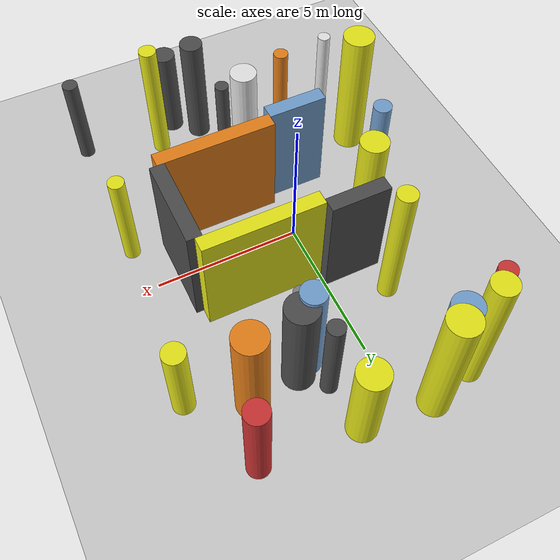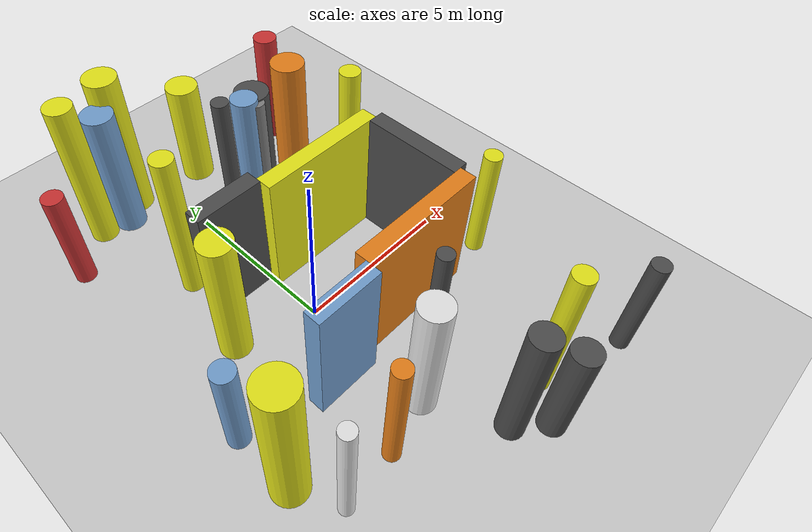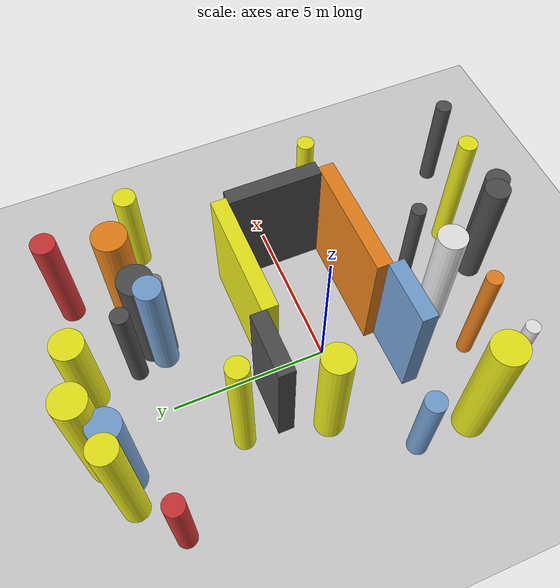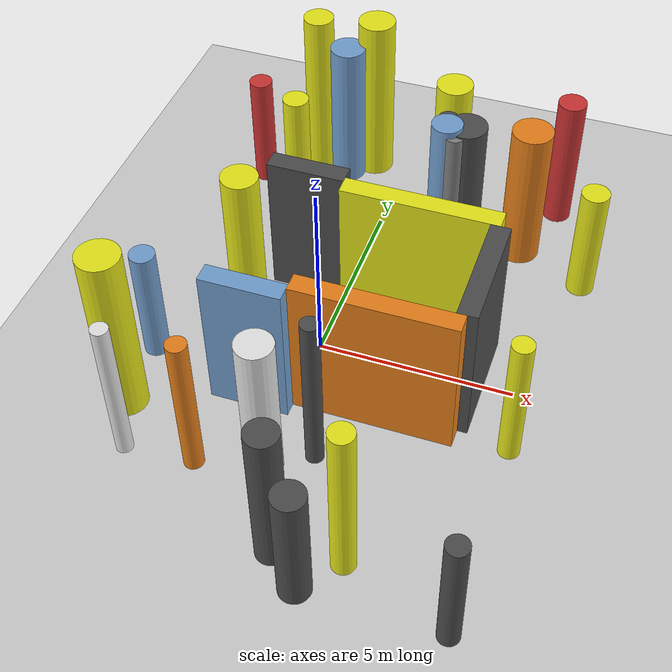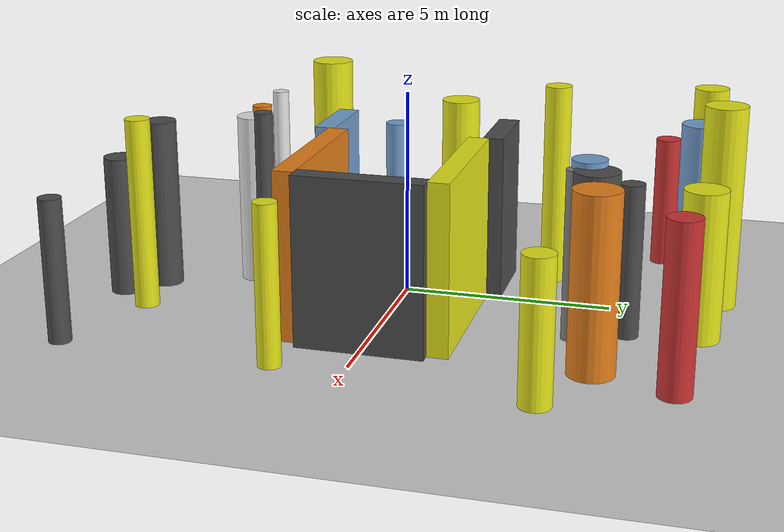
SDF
<?xml version='1.0'?>
<sdf version='1.6'>
  <world name='routeA_rl_v1__dense_recovery__rl_train__cul_de_sac_trap__000082'>
    <!-- Sun light -->
    <light name='sun' type='directional'>
      <cast_shadows>1</cast_shadows>
      <pose>0 0 10 0 0 0</pose>
      <diffuse>0.8 0.8 0.8 1</diffuse>
      <specular>0.2 0.2 0.2 1</specular>
      <attenuation>
        <range>1000</range>
        <constant>0.9</constant>
        <linear>0.01</linear>
        <quadratic>0.001</quadratic>
      </attenuation>
      <direction>-0.5 0.1 -0.9</direction>
    </light>

    <!-- Ground plane -->
    <model name='ground_plane'>
      <static>1</static>
      <link name='link'>
        <collision name='collision'>
          <geometry>
            <plane>
              <normal>0 0 1</normal>
              <size>100 100</size>
            </plane>
          </geometry>
          <surface>
            <contact>
              <collide_bitmask>65535</collide_bitmask>
              <ode/>
            </contact>
            <friction>
              <ode>
                <mu>100</mu>
                <mu2>50</mu2>
              </ode>
              <torsional><ode/></torsional>
            </friction>
            <bounce/>
          </surface>
          <max_contacts>10</max_contacts>
        </collision>
        <visual name='visual'>
          <cast_shadows>0</cast_shadows>
          <geometry>
            <plane>
              <normal>0 0 1</normal>
              <size>100 100</size>
            </plane>
          </geometry>
          <material>
            <script>
              <uri>file://media/materials/scripts/gazebo.material</uri>
              <n>Gazebo/Grey</n>
            </script>
          </material>
        </visual>
      </link>
    </model>

    <!-- Environment -->
    <magnetic_field>6e-06 2.3e-05 -4.2e-05</magnetic_field>
    <atmosphere type='adiabatic'/>
    <physics name='default_physics' default='0' type='ode'>
      <gravity>0 0 -9.8</gravity>
      <max_step_size>0.004</max_step_size>
      <real_time_factor>1</real_time_factor>
      <real_time_update_rate>250</real_time_update_rate>
    </physics>
    <scene>
      <ambient>0.4 0.4 0.4 1</ambient>
      <background>0.7 0.7 0.7 1</background>
      <shadows>1</shadows>
    </scene>
    <wind/>
    <spherical_coordinates>
      <surface_model>EARTH_WGS84</surface_model>
      <latitude_deg>0</latitude_deg>
      <longitude_deg>0</longitude_deg>
      <elevation>0</elevation>
      <heading_deg>0</heading_deg>
    </spherical_coordinates>

    <!-- ============ OBSTACLES (30) ============ -->
    <model name='trap_side_l'>
      <static>1</static>
      <link name='link'>
        <visual name='visual'>
          <geometry>
            <box>
              <size>4.0000 0.5000 4.0000</size>
            </box>
          </geometry>
          <material>
            <script>
              <n>Gazebo/Orange</n>
              <uri>file://media/materials/scripts/gazebo.material</uri>
            </script>
            <ambient>0.9 0.5 0.1 1</ambient>
          </material>
        </visual>
        <collision name='collision'>
          <geometry>
            <box>
              <size>4.0000 0.5000 4.0000</size>
            </box>
          </geometry>
          <max_contacts>10</max_contacts>
          <surface>
            <contact><ode/></contact>
            <bounce/>
            <friction>
              <ode><mu>1</mu><mu2>1</mu2></ode>
              <torsional><ode/></torsional>
            </friction>
          </surface>
        </collision>
      </link>
      <pose>2.0000 -1.7500 2.0000 0 0 0.0000</pose>
    </model>

    <model name='trap_side_r'>
      <static>1</static>
      <link name='link'>
        <visual name='visual'>
          <geometry>
            <box>
              <size>4.0000 0.5000 4.0000</size>
            </box>
          </geometry>
          <material>
            <script>
              <n>Gazebo/Yellow</n>
              <uri>file://media/materials/scripts/gazebo.material</uri>
            </script>
            <ambient>0.9 0.9 0.1 1</ambient>
          </material>
        </visual>
        <collision name='collision'>
          <geometry>
            <box>
              <size>4.0000 0.5000 4.0000</size>
            </box>
          </geometry>
          <max_contacts>10</max_contacts>
          <surface>
            <contact><ode/></contact>
            <bounce/>
            <friction>
              <ode><mu>1</mu><mu2>1</mu2></ode>
              <torsional><ode/></torsional>
            </friction>
          </surface>
        </collision>
      </link>
      <pose>2.0000 1.7500 2.0000 0 0 0.0000</pose>
    </model>

    <model name='trap_back'>
      <static>1</static>
      <link name='link'>
        <visual name='visual'>
          <geometry>
            <box>
              <size>0.5000 3.0000 4.0000</size>
            </box>
          </geometry>
          <material>
            <script>
              <n>Gazebo/DarkGrey</n>
              <uri>file://media/materials/scripts/gazebo.material</uri>
            </script>
            <ambient>0.3 0.3 0.3 1</ambient>
          </material>
        </visual>
        <collision name='collision'>
          <geometry>
            <box>
              <size>0.5000 3.0000 4.0000</size>
            </box>
          </geometry>
          <max_contacts>10</max_contacts>
          <surface>
            <contact><ode/></contact>
            <bounce/>
            <friction>
              <ode><mu>1</mu><mu2>1</mu2></ode>
              <torsional><ode/></torsional>
            </friction>
          </surface>
        </collision>
      </link>
      <pose>4.0000 0.0000 2.0000 0 0 0.0000</pose>
    </model>

    <model name='trap_funnel_l'>
      <static>1</static>
      <link name='link'>
        <visual name='visual'>
          <geometry>
            <box>
              <size>2.0000 0.5000 4.0000</size>
            </box>
          </geometry>
          <material>
            <script>
              <n>Gazebo/Blue</n>
              <uri>file://media/materials/scripts/gazebo.material</uri>
            </script>
            <ambient>0.447 0.624 0.812 1</ambient>
          </material>
        </visual>
        <collision name='collision'>
          <geometry>
            <box>
              <size>2.0000 0.5000 4.0000</size>
            </box>
          </geometry>
          <max_contacts>10</max_contacts>
          <surface>
            <contact><ode/></contact>
            <bounce/>
            <friction>
              <ode><mu>1</mu><mu2>1</mu2></ode>
              <torsional><ode/></torsional>
            </friction>
          </surface>
        </collision>
      </link>
      <pose>-1.0000 -2.1000 2.0000 0 0 0.0000</pose>
    </model>

    <model name='trap_funnel_r'>
      <static>1</static>
      <link name='link'>
        <visual name='visual'>
          <geometry>
            <box>
              <size>2.0000 0.5000 4.0000</size>
            </box>
          </geometry>
          <material>
            <script>
              <n>Gazebo/DarkGrey</n>
              <uri>file://media/materials/scripts/gazebo.material</uri>
            </script>
            <ambient>0.3 0.3 0.3 1</ambient>
          </material>
        </visual>
        <collision name='collision'>
          <geometry>
            <box>
              <size>2.0000 0.5000 4.0000</size>
            </box>
          </geometry>
          <max_contacts>10</max_contacts>
          <surface>
            <contact><ode/></contact>
            <bounce/>
            <friction>
              <ode><mu>1</mu><mu2>1</mu2></ode>
              <torsional><ode/></torsional>
            </friction>
          </surface>
        </collision>
      </link>
      <pose>-1.0000 2.1000 2.0000 0 0 0.0000</pose>
    </model>

    <model name='trap_scatter_0'>
      <static>1</static>
      <link name='link'>
        <visual name='visual'>
          <geometry>
            <cylinder>
              <radius>0.2412</radius>
              <length>3.9821</length>
            </cylinder>
          </geometry>
          <material>
            <script>
              <n>Gazebo/Grey</n>
              <uri>file://media/materials/scripts/gazebo.material</uri>
            </script>
            <ambient>0.5 0.5 0.5 1</ambient>
          </material>
        </visual>
        <collision name='collision'>
          <geometry>
            <cylinder>
              <radius>0.2412</radius>
              <length>3.9821</length>
            </cylinder>
          </geometry>
          <max_contacts>10</max_contacts>
          <surface>
            <contact><ode/></contact>
            <bounce/>
            <friction>
              <ode><mu>1</mu><mu2>1</mu2></ode>
              <torsional><ode/></torsional>
            </friction>
          </surface>
        </collision>
      </link>
      <pose>2.0764 4.4012 1.9910 0 0 0.0000</pose>
    </model>

    <model name='trap_scatter_1'>
      <static>1</static>
      <link name='link'>
        <visual name='visual'>
          <geometry>
            <cylinder>
              <radius>0.4105</radius>
              <length>4.1604</length>
            </cylinder>
          </geometry>
          <material>
            <script>
              <n>Gazebo/Blue</n>
              <uri>file://media/materials/scripts/gazebo.material</uri>
            </script>
            <ambient>0.447 0.624 0.812 1</ambient>
          </material>
        </visual>
        <collision name='collision'>
          <geometry>
            <cylinder>
              <radius>0.4105</radius>
              <length>4.1604</length>
            </cylinder>
          </geometry>
          <max_contacts>10</max_contacts>
          <surface>
            <contact><ode/></contact>
            <bounce/>
            <friction>
              <ode><mu>1</mu><mu2>1</mu2></ode>
              <torsional><ode/></torsional>
            </friction>
          </surface>
        </collision>
      </link>
      <pose>1.8128 4.6395 2.0802 0 0 0.0000</pose>
    </model>

    <model name='trap_scatter_2'>
      <static>1</static>
      <link name='link'>
        <visual name='visual'>
          <geometry>
            <cylinder>
              <radius>0.4128</radius>
              <length>4.9771</length>
            </cylinder>
          </geometry>
          <material>
            <script>
              <n>Gazebo/Yellow</n>
              <uri>file://media/materials/scripts/gazebo.material</uri>
            </script>
            <ambient>0.9 0.9 0.1 1</ambient>
          </material>
        </visual>
        <collision name='collision'>
          <geometry>
            <cylinder>
              <radius>0.4128</radius>
              <length>4.9771</length>
            </cylinder>
          </geometry>
          <max_contacts>10</max_contacts>
          <surface>
            <contact><ode/></contact>
            <bounce/>
            <friction>
              <ode><mu>1</mu><mu2>1</mu2></ode>
              <torsional><ode/></torsional>
            </friction>
          </surface>
        </collision>
      </link>
      <pose>-2.4859 6.9817 2.4886 0 0 0.0000</pose>
    </model>

    <model name='trap_scatter_3'>
      <static>1</static>
      <link name='link'>
        <visual name='visual'>
          <geometry>
            <cylinder>
              <radius>0.4509</radius>
              <length>4.1941</length>
            </cylinder>
          </geometry>
          <material>
            <script>
              <n>Gazebo/White</n>
              <uri>file://media/materials/scripts/gazebo.material</uri>
            </script>
            <ambient>0.9 0.9 0.9 1</ambient>
          </material>
        </visual>
        <collision name='collision'>
          <geometry>
            <cylinder>
              <radius>0.4509</radius>
              <length>4.1941</length>
            </cylinder>
          </geometry>
          <max_contacts>10</max_contacts>
          <surface>
            <contact><ode/></contact>
            <bounce/>
            <friction>
              <ode><mu>1</mu><mu2>1</mu2></ode>
              <torsional><ode/></torsional>
            </friction>
          </surface>
        </collision>
      </link>
      <pose>0.0199 -3.8923 2.0970 0 0 0.0000</pose>
    </model>

    <model name='trap_scatter_4'>
      <static>1</static>
      <link name='link'>
        <visual name='visual'>
          <geometry>
            <cylinder>
              <radius>0.2784</radius>
              <length>3.6102</length>
            </cylinder>
          </geometry>
          <material>
            <script>
              <n>Gazebo/DarkGrey</n>
              <uri>file://media/materials/scripts/gazebo.material</uri>
            </script>
            <ambient>0.3 0.3 0.3 1</ambient>
          </material>
        </visual>
        <collision name='collision'>
          <geometry>
            <cylinder>
              <radius>0.2784</radius>
              <length>3.6102</length>
            </cylinder>
          </geometry>
          <max_contacts>10</max_contacts>
          <surface>
            <contact><ode/></contact>
            <bounce/>
            <friction>
              <ode><mu>1</mu><mu2>1</mu2></ode>
              <torsional><ode/></torsional>
            </friction>
          </surface>
        </collision>
      </link>
      <pose>1.6067 5.5921 1.8051 0 0 0.0000</pose>
    </model>

    <model name='trap_scatter_5'>
      <static>1</static>
      <link name='link'>
        <visual name='visual'>
          <geometry>
            <cylinder>
              <radius>0.3274</radius>
              <length>4.9858</length>
            </cylinder>
          </geometry>
          <material>
            <script>
              <n>Gazebo/Yellow</n>
              <uri>file://media/materials/scripts/gazebo.material</uri>
            </script>
            <ambient>0.9 0.9 0.1 1</ambient>
          </material>
        </visual>
        <collision name='collision'>
          <geometry>
            <cylinder>
              <radius>0.3274</radius>
              <length>4.9858</length>
            </cylinder>
          </geometry>
          <max_contacts>10</max_contacts>
          <surface>
            <contact><ode/></contact>
            <bounce/>
            <friction>
              <ode><mu>1</mu><mu2>1</mu2></ode>
              <torsional><ode/></torsional>
            </friction>
          </surface>
        </collision>
      </link>
      <pose>-1.7674 3.3546 2.4929 0 0 0.0000</pose>
    </model>

    <model name='trap_scatter_6'>
      <static>1</static>
      <link name='link'>
        <visual name='visual'>
          <geometry>
            <cylinder>
              <radius>0.3919</radius>
              <length>4.1741</length>
            </cylinder>
          </geometry>
          <material>
            <script>
              <n>Gazebo/DarkGrey</n>
              <uri>file://media/materials/scripts/gazebo.material</uri>
            </script>
            <ambient>0.3 0.3 0.3 1</ambient>
          </material>
        </visual>
        <collision name='collision'>
          <geometry>
            <cylinder>
              <radius>0.3919</radius>
              <length>4.1741</length>
            </cylinder>
          </geometry>
          <max_contacts>10</max_contacts>
          <surface>
            <contact><ode/></contact>
            <bounce/>
            <friction>
              <ode><mu>1</mu><mu2>1</mu2></ode>
              <torsional><ode/></torsional>
            </friction>
          </surface>
        </collision>
      </link>
      <pose>1.0348 -5.9923 2.0871 0 0 0.0000</pose>
    </model>

    <model name='trap_scatter_7'>
      <static>1</static>
      <link name='link'>
        <visual name='visual'>
          <geometry>
            <cylinder>
              <radius>0.5288</radius>
              <length>4.8751</length>
            </cylinder>
          </geometry>
          <material>
            <script>
              <n>Gazebo/Yellow</n>
              <uri>file://media/materials/scripts/gazebo.material</uri>
            </script>
            <ambient>0.9 0.9 0.1 1</ambient>
          </material>
        </visual>
        <collision name='collision'>
          <geometry>
            <cylinder>
              <radius>0.5288</radius>
              <length>4.8751</length>
            </cylinder>
          </geometry>
          <max_contacts>10</max_contacts>
          <surface>
            <contact><ode/></contact>
            <bounce/>
            <friction>
              <ode><mu>1</mu><mu2>1</mu2></ode>
              <torsional><ode/></torsional>
            </friction>
          </surface>
        </collision>
      </link>
      <pose>-3.8835 -3.1420 2.4375 0 0 0.0000</pose>
    </model>

    <model name='trap_scatter_8'>
      <static>1</static>
      <link name='link'>
        <visual name='visual'>
          <geometry>
            <cylinder>
              <radius>0.3232</radius>
              <length>3.2542</length>
            </cylinder>
          </geometry>
          <material>
            <script>
              <n>Gazebo/Blue</n>
              <uri>file://media/materials/scripts/gazebo.material</uri>
            </script>
            <ambient>0.447 0.624 0.812 1</ambient>
          </material>
        </visual>
        <collision name='collision'>
          <geometry>
            <cylinder>
              <radius>0.3232</radius>
              <length>3.2542</length>
            </cylinder>
          </geometry>
          <max_contacts>10</max_contacts>
          <surface>
            <contact><ode/></contact>
            <bounce/>
            <friction>
              <ode><mu>1</mu><mu2>1</mu2></ode>
              <torsional><ode/></torsional>
            </friction>
          </surface>
        </collision>
      </link>
      <pose>-3.9381 -1.3296 1.6271 0 0 0.0000</pose>
    </model>

    <model name='trap_scatter_9'>
      <static>1</static>
      <link name='link'>
        <visual name='visual'>
          <geometry>
            <cylinder>
              <radius>0.5285</radius>
              <length>4.0302</length>
            </cylinder>
          </geometry>
          <material>
            <script>
              <n>Gazebo/DarkGrey</n>
              <uri>file://media/materials/scripts/gazebo.material</uri>
            </script>
            <ambient>0.3 0.3 0.3 1</ambient>
          </material>
        </visual>
        <collision name='collision'>
          <geometry>
            <cylinder>
              <radius>0.5285</radius>
              <length>4.0302</length>
            </cylinder>
          </geometry>
          <max_contacts>10</max_contacts>
          <surface>
            <contact><ode/></contact>
            <bounce/>
            <friction>
              <ode><mu>1</mu><mu2>1</mu2></ode>
              <torsional><ode/></torsional>
            </friction>
          </surface>
        </collision>
      </link>
      <pose>2.2842 4.8747 2.0151 0 0 0.0000</pose>
    </model>

    <model name='trap_scatter_10'>
      <static>1</static>
      <link name='link'>
        <visual name='visual'>
          <geometry>
            <cylinder>
              <radius>0.3628</radius>
              <length>3.2788</length>
            </cylinder>
          </geometry>
          <material>
            <script>
              <n>Gazebo/Yellow</n>
              <uri>file://media/materials/scripts/gazebo.material</uri>
            </script>
            <ambient>0.9 0.9 0.1 1</ambient>
          </material>
        </visual>
        <collision name='collision'>
          <geometry>
            <cylinder>
              <radius>0.3628</radius>
              <length>3.2788</length>
            </cylinder>
          </geometry>
          <max_contacts>10</max_contacts>
          <surface>
            <contact><ode/></contact>
            <bounce/>
            <friction>
              <ode><mu>1</mu><mu2>1</mu2></ode>
              <torsional><ode/></torsional>
            </friction>
          </surface>
        </collision>
      </link>
      <pose>5.8039 4.2339 1.6394 0 0 0.0000</pose>
    </model>

    <model name='trap_scatter_11'>
      <static>1</static>
      <link name='link'>
        <visual name='visual'>
          <geometry>
            <cylinder>
              <radius>0.2702</radius>
              <length>3.7082</length>
            </cylinder>
          </geometry>
          <material>
            <script>
              <n>Gazebo/Yellow</n>
              <uri>file://media/materials/scripts/gazebo.material</uri>
            </script>
            <ambient>0.9 0.9 0.1 1</ambient>
          </material>
        </visual>
        <collision name='collision'>
          <geometry>
            <cylinder>
              <radius>0.2702</radius>
              <length>3.7082</length>
            </cylinder>
          </geometry>
          <max_contacts>10</max_contacts>
          <surface>
            <contact><ode/></contact>
            <bounce/>
            <friction>
              <ode><mu>1</mu><mu2>1</mu2></ode>
              <torsional><ode/></torsional>
            </friction>
          </surface>
        </collision>
      </link>
      <pose>5.3030 -1.6694 1.8541 0 0 0.0000</pose>
    </model>

    <model name='trap_scatter_12'>
      <static>1</static>
      <link name='link'>
        <visual name='visual'>
          <geometry>
            <cylinder>
              <radius>0.5380</radius>
              <length>4.1084</length>
            </cylinder>
          </geometry>
          <material>
            <script>
              <n>Gazebo/Orange</n>
              <uri>file://media/materials/scripts/gazebo.material</uri>
            </script>
            <ambient>0.9 0.5 0.1 1</ambient>
          </material>
        </visual>
        <collision name='collision'>
          <geometry>
            <cylinder>
              <radius>0.5380</radius>
              <length>4.1084</length>
            </cylinder>
          </geometry>
          <max_contacts>10</max_contacts>
          <surface>
            <contact><ode/></contact>
            <bounce/>
            <friction>
              <ode><mu>1</mu><mu2>1</mu2></ode>
              <torsional><ode/></torsional>
            </friction>
          </surface>
        </collision>
      </link>
      <pose>3.9283 5.1042 2.0542 0 0 0.0000</pose>
    </model>

    <model name='trap_scatter_13'>
      <static>1</static>
      <link name='link'>
        <visual name='visual'>
          <geometry>
            <cylinder>
              <radius>0.3899</radius>
              <length>3.4228</length>
            </cylinder>
          </geometry>
          <material>
            <script>
              <n>Gazebo/DarkGrey</n>
              <uri>file://media/materials/scripts/gazebo.material</uri>
            </script>
            <ambient>0.3 0.3 0.3 1</ambient>
          </material>
        </visual>
        <collision name='collision'>
          <geometry>
            <cylinder>
              <radius>0.3899</radius>
              <length>3.4228</length>
            </cylinder>
          </geometry>
          <max_contacts>10</max_contacts>
          <surface>
            <contact><ode/></contact>
            <bounce/>
            <friction>
              <ode><mu>1</mu><mu2>1</mu2></ode>
              <torsional><ode/></torsional>
            </friction>
          </surface>
        </collision>
      </link>
      <pose>1.8440 -6.7100 1.7114 0 0 0.0000</pose>
    </model>

    <model name='trap_scatter_14'>
      <static>1</static>
      <link name='link'>
        <visual name='visual'>
          <geometry>
            <cylinder>
              <radius>0.5032</radius>
              <length>3.5362</length>
            </cylinder>
          </geometry>
          <material>
            <script>
              <n>Gazebo/Yellow</n>
              <uri>file://media/materials/scripts/gazebo.material</uri>
            </script>
            <ambient>0.9 0.9 0.1 1</ambient>
          </material>
        </visual>
        <collision name='collision'>
          <geometry>
            <cylinder>
              <radius>0.5032</radius>
              <length>3.5362</length>
            </cylinder>
          </geometry>
          <max_contacts>10</max_contacts>
          <surface>
            <contact><ode/></contact>
            <bounce/>
            <friction>
              <ode><mu>1</mu><mu2>1</mu2></ode>
              <torsional><ode/></torsional>
            </friction>
          </surface>
        </collision>
      </link>
      <pose>1.3545 7.1714 1.7681 0 0 0.0000</pose>
    </model>

    <model name='trap_scatter_15'>
      <static>1</static>
      <link name='link'>
        <visual name='visual'>
          <geometry>
            <cylinder>
              <radius>0.2253</radius>
              <length>4.5462</length>
            </cylinder>
          </geometry>
          <material>
            <script>
              <n>Gazebo/DarkGrey</n>
              <uri>file://media/materials/scripts/gazebo.material</uri>
            </script>
            <ambient>0.3 0.3 0.3 1</ambient>
          </material>
        </visual>
        <collision name='collision'>
          <geometry>
            <cylinder>
              <radius>0.2253</radius>
              <length>4.5462</length>
            </cylinder>
          </geometry>
          <max_contacts>10</max_contacts>
          <surface>
            <contact><ode/></contact>
            <bounce/>
            <friction>
              <ode><mu>1</mu><mu2>1</mu2></ode>
              <torsional><ode/></torsional>
            </friction>
          </surface>
        </collision>
      </link>
      <pose>1.0445 -3.2831 2.2731 0 0 0.0000</pose>
    </model>

    <model name='trap_scatter_16'>
      <static>1</static>
      <link name='link'>
        <visual name='visual'>
          <geometry>
            <cylinder>
              <radius>0.2645</radius>
              <length>3.3819</length>
            </cylinder>
          </geometry>
          <material>
            <script>
              <n>Gazebo/DarkGrey</n>
              <uri>file://media/materials/scripts/gazebo.material</uri>
            </script>
            <ambient>0.3 0.3 0.3 1</ambient>
          </material>
        </visual>
        <collision name='collision'>
          <geometry>
            <cylinder>
              <radius>0.2645</radius>
              <length>3.3819</length>
            </cylinder>
          </geometry>
          <max_contacts>10</max_contacts>
          <surface>
            <contact><ode/></contact>
            <bounce/>
            <friction>
              <ode><mu>1</mu><mu2>1</mu2></ode>
              <torsional><ode/></torsional>
            </friction>
          </surface>
        </collision>
      </link>
      <pose>5.2577 -6.7133 1.6909 0 0 0.0000</pose>
    </model>

    <model name='trap_scatter_17'>
      <static>1</static>
      <link name='link'>
        <visual name='visual'>
          <geometry>
            <cylinder>
              <radius>0.5056</radius>
              <length>4.9115</length>
            </cylinder>
          </geometry>
          <material>
            <script>
              <n>Gazebo/Yellow</n>
              <uri>file://media/materials/scripts/gazebo.material</uri>
            </script>
            <ambient>0.9 0.9 0.1 1</ambient>
          </material>
        </visual>
        <collision name='collision'>
          <geometry>
            <cylinder>
              <radius>0.5056</radius>
              <length>4.9115</length>
            </cylinder>
          </geometry>
          <max_contacts>10</max_contacts>
          <surface>
            <contact><ode/></contact>
            <bounce/>
            <friction>
              <ode><mu>1</mu><mu2>1</mu2></ode>
              <torsional><ode/></torsional>
            </friction>
          </surface>
        </collision>
      </link>
      <pose>-0.9692 7.4107 2.4557 0 0 0.0000</pose>
    </model>

    <model name='trap_scatter_18'>
      <static>1</static>
      <link name='link'>
        <visual name='visual'>
          <geometry>
            <cylinder>
              <radius>0.2949</radius>
              <length>4.6043</length>
            </cylinder>
          </geometry>
          <material>
            <script>
              <n>Gazebo/Yellow</n>
              <uri>file://media/materials/scripts/gazebo.material</uri>
            </script>
            <ambient>0.9 0.9 0.1 1</ambient>
          </material>
        </visual>
        <collision name='collision'>
          <geometry>
            <cylinder>
              <radius>0.2949</radius>
              <length>4.6043</length>
            </cylinder>
          </geometry>
          <max_contacts>10</max_contacts>
          <surface>
            <contact><ode/></contact>
            <bounce/>
            <friction>
              <ode><mu>1</mu><mu2>1</mu2></ode>
              <torsional><ode/></torsional>
            </friction>
          </surface>
        </collision>
      </link>
      <pose>2.6322 -5.8014 2.3022 0 0 0.0000</pose>
    </model>

    <model name='trap_scatter_19'>
      <static>1</static>
      <link name='link'>
        <visual name='visual'>
          <geometry>
            <cylinder>
              <radius>0.3115</radius>
              <length>3.3072</length>
            </cylinder>
          </geometry>
          <material>
            <script>
              <n>Gazebo/Red</n>
              <uri>file://media/materials/scripts/gazebo.material</uri>
            </script>
            <ambient>0.8 0.2 0.2 1</ambient>
          </material>
        </visual>
        <collision name='collision'>
          <geometry>
            <cylinder>
              <radius>0.3115</radius>
              <length>3.3072</length>
            </cylinder>
          </geometry>
          <max_contacts>10</max_contacts>
          <surface>
            <contact><ode/></contact>
            <bounce/>
            <friction>
              <ode><mu>1</mu><mu2>1</mu2></ode>
              <torsional><ode/></torsional>
            </friction>
          </surface>
        </collision>
      </link>
      <pose>-3.8353 5.9173 1.6536 0 0 0.0000</pose>
    </model>

    <model name='trap_scatter_20'>
      <static>1</static>
      <link name='link'>
        <visual name='visual'>
          <geometry>
            <cylinder>
              <radius>0.4812</radius>
              <length>4.2849</length>
            </cylinder>
          </geometry>
          <material>
            <script>
              <n>Gazebo/Blue</n>
              <uri>file://media/materials/scripts/gazebo.material</uri>
            </script>
            <ambient>0.447 0.624 0.812 1</ambient>
          </material>
        </visual>
        <collision name='collision'>
          <geometry>
            <cylinder>
              <radius>0.4812</radius>
              <length>4.2849</length>
            </cylinder>
          </geometry>
          <max_contacts>10</max_contacts>
          <surface>
            <contact><ode/></contact>
            <bounce/>
            <friction>
              <ode><mu>1</mu><mu2>1</mu2></ode>
              <torsional><ode/></torsional>
            </friction>
          </surface>
        </collision>
      </link>
      <pose>-1.6052 6.8419 2.1425 0 0 0.0000</pose>
    </model>

    <model name='trap_scatter_21'>
      <static>1</static>
      <link name='link'>
        <visual name='visual'>
          <geometry>
            <cylinder>
              <radius>0.2492</radius>
              <length>4.0690</length>
            </cylinder>
          </geometry>
          <material>
            <script>
              <n>Gazebo/Orange</n>
              <uri>file://media/materials/scripts/gazebo.material</uri>
            </script>
            <ambient>0.9 0.5 0.1 1</ambient>
          </material>
        </visual>
        <collision name='collision'>
          <geometry>
            <cylinder>
              <radius>0.2492</radius>
              <length>4.0690</length>
            </cylinder>
          </geometry>
          <max_contacts>10</max_contacts>
          <surface>
            <contact><ode/></contact>
            <bounce/>
            <friction>
              <ode><mu>1</mu><mu2>1</mu2></ode>
              <torsional><ode/></torsional>
            </friction>
          </surface>
        </collision>
      </link>
      <pose>-1.5766 -4.3233 2.0345 0 0 0.0000</pose>
    </model>

    <model name='trap_scatter_22'>
      <static>1</static>
      <link name='link'>
        <visual name='visual'>
          <geometry>
            <cylinder>
              <radius>0.2126</radius>
              <length>4.0763</length>
            </cylinder>
          </geometry>
          <material>
            <script>
              <n>Gazebo/White</n>
              <uri>file://media/materials/scripts/gazebo.material</uri>
            </script>
            <ambient>0.9 0.9 0.9 1</ambient>
          </material>
        </visual>
        <collision name='collision'>
          <geometry>
            <cylinder>
              <radius>0.2126</radius>
              <length>4.0763</length>
            </cylinder>
          </geometry>
          <max_contacts>10</max_contacts>
          <surface>
            <contact><ode/></contact>
            <bounce/>
            <friction>
              <ode><mu>1</mu><mu2>1</mu2></ode>
              <torsional><ode/></torsional>
            </friction>
          </surface>
        </collision>
      </link>
      <pose>-3.3049 -4.4472 2.0382 0 0 0.0000</pose>
    </model>

    <model name='trap_scatter_23'>
      <static>1</static>
      <link name='link'>
        <visual name='visual'>
          <geometry>
            <cylinder>
              <radius>0.3780</radius>
              <length>3.8677</length>
            </cylinder>
          </geometry>
          <material>
            <script>
              <n>Gazebo/Red</n>
              <uri>file://media/materials/scripts/gazebo.material</uri>
            </script>
            <ambient>0.8 0.2 0.2 1</ambient>
          </material>
        </visual>
        <collision name='collision'>
          <geometry>
            <cylinder>
              <radius>0.3780</radius>
              <length>3.8677</length>
            </cylinder>
          </geometry>
          <max_contacts>10</max_contacts>
          <surface>
            <contact><ode/></contact>
            <bounce/>
            <friction>
              <ode><mu>1</mu><mu2>1</mu2></ode>
              <torsional><ode/></torsional>
            </friction>
          </surface>
        </collision>
      </link>
      <pose>4.5971 6.9308 1.9339 0 0 0.0000</pose>
    </model>

    <model name='trap_scatter_24'>
      <static>1</static>
      <link name='link'>
        <visual name='visual'>
          <geometry>
            <cylinder>
              <radius>0.4717</radius>
              <length>4.3823</length>
            </cylinder>
          </geometry>
          <material>
            <script>
              <n>Gazebo/Yellow</n>
              <uri>file://media/materials/scripts/gazebo.material</uri>
            </script>
            <ambient>0.9 0.9 0.1 1</ambient>
          </material>
        </visual>
        <collision name='collision'>
          <geometry>
            <cylinder>
              <radius>0.4717</radius>
              <length>4.3823</length>
            </cylinder>
          </geometry>
          <max_contacts>10</max_contacts>
          <surface>
            <contact><ode/></contact>
            <bounce/>
            <friction>
              <ode><mu>1</mu><mu2>1</mu2></ode>
              <torsional><ode/></torsional>
            </friction>
          </surface>
        </collision>
      </link>
      <pose>-2.2595 0.7991 2.1912 0 0 0.0000</pose>
    </model>

    <!-- GUI camera -->
    <gui fullscreen='0'>
      <camera name='user_camera'>
        <pose>-15 0 18 0 0.85 0.15</pose>
        <view_controller>orbit</view_controller>
        <projection_type>perspective</projection_type>
      </camera>
    </gui>
  </world>
</sdf>
